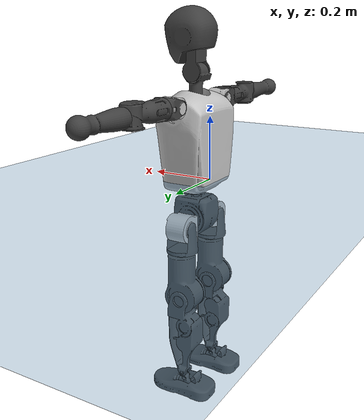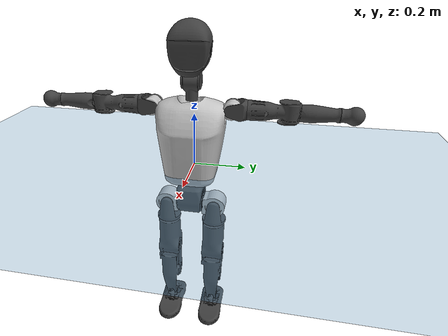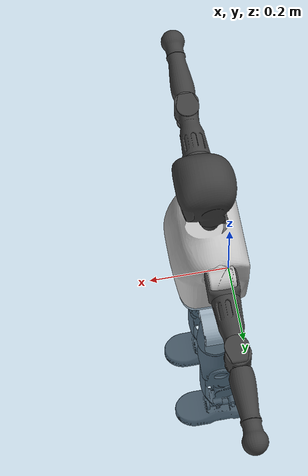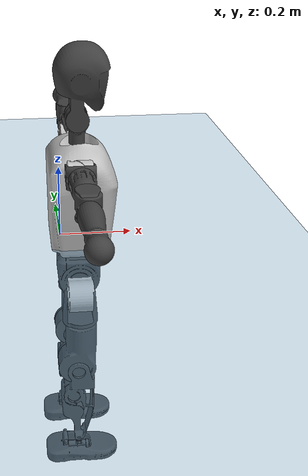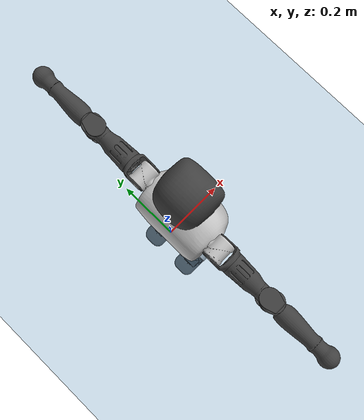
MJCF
<mujoco model="T1">
  <compiler angle="radian" assetdir="assets" balanceinertia="true" inertiafromgeom="false"/>

  <option timestep="0.005" density="1.2" viscosity="2e-05"/>

  <size nkey="1"/>

  <visual>
    <quality shadowsize="8192"/>
    <map shadowclip="0.5"/>
  </visual>

  <default>
    <default class="/">
      <joint armature="0.01" damping="0.01" frictionloss="0.1"/>
      <geom contype="0" conaffinity="0" group="1" solref="-1000 -80"/>
      <site size="0.01 0.005 0.005" group="5"/>
      <general forcelimited="true" biastype="affine" gainprm="25" biasprm="0 -25 -0.6"/>
      <default class="t1">
        <geom rgba="0.25 0.25 0.25 1"/>
        <default class="visual">
          <geom type="mesh" group="2"/>
        </default>
        <default class="collision">
          <geom group="3"/>
        </default>
        <default class="foot">
          <geom size="0.1115 0.05 0.015" type="box" condim="6" group="4" priority="1" solimp="0.015 1 0.015"/>
        </default>
        <default class="reward_collision_sphere">
          <geom group="5" rgba="1 0 0 1"/>
        </default>
      </default>
    </default>
  </default>

  <asset>
    <texture type="skybox" colorspace="auto" name="//unnamed_texture_0" builtin="gradient" rgb1="0.95 0.95 0.95" rgb2="0.95 0.95 0.95" width="100" height="600"/>
    <texture type="2d" colorspace="auto" name="texplane" builtin="checker" rgb1="0.345 0.575 0.748" rgb2="0.345 0.575 0.748" markrgb="1 1 1" width="512" height="512"/>
    <material name="MatPlane" class="/" texture="texplane" texuniform="true" texrepeat="2 2" specular="0.9"/>
    <mesh name="Trunk" class="/" file="Trunk.stl"/>
    <mesh name="H1" class="/" file="H1.stl"/>
    <mesh name="H2" class="/" file="H2.stl"/>
    <mesh name="AL1" class="/" file="AL1.stl"/>
    <mesh name="AL2" class="/" file="AL2.stl"/>
    <mesh name="AL3" class="/" file="AL3.stl"/>
    <mesh name="left_hand_link" class="/" file="left_hand_link.stl"/>
    <mesh name="AR1" class="/" file="AR1.stl"/>
    <mesh name="AR2" class="/" file="AR2.stl"/>
    <mesh name="AR3" class="/" file="AR3.stl"/>
    <mesh name="right_hand_link" class="/" file="right_hand_link.stl"/>
    <mesh name="Waist" class="/" file="Waist.stl"/>
    <mesh name="Hip_Pitch_Left" class="/" file="Hip_Pitch_Left.stl"/>
    <mesh name="Hip_Roll_Left" class="/" file="Hip_Roll_Left.stl"/>
    <mesh name="Hip_Yaw_Left" class="/" file="Hip_Yaw_Left.stl"/>
    <mesh name="Shank_Left" class="/" file="Shank_Left.stl"/>
    <mesh name="Ankle_Cross_Left" class="/" file="Ankle_Cross_Left.stl"/>
    <mesh name="left_foot_link" class="/" file="left_foot_link.stl"/>
    <mesh name="Hip_Pitch_Right" class="/" file="Hip_Pitch_Right.stl"/>
    <mesh name="Hip_Roll_Right" class="/" file="Hip_Roll_Right.stl"/>
    <mesh name="Hip_Yaw_Right" class="/" file="Hip_Yaw_Right.stl"/>
    <mesh name="Shank_Right" class="/" file="Shank_Right.stl"/>
    <mesh name="Ankle_Cross_Right" class="/" file="Ankle_Cross_Right.stl"/>
    <mesh name="right_foot_link" class="/" file="right_foot_link.stl"/>
  </asset>

  <worldbody>
    <geom name="floor" class="/" size="100 100 0.125" type="plane" group="0" material="MatPlane"/>
    <light name="toplight_shadow" class="/" pos="0 0 5" dir="0.0990148 0.0990148 -0.990148" type="directional" ambient="0.04 0.04 0.04" diffuse="0.55 0.55 0.55" specular="0.12 0.12 0.12"/>
    <light name="toplight_fill" class="/" pos="0 0 5" dir="0.0990148 0.0990148 -0.990148" type="directional" castshadow="false" ambient="0.04 0.04 0.04" diffuse="0.3 0.3 0.3" specular="0.08 0.08 0.08"/>
    <body name="trunk" childclass="t1" pos="0.000303149 2.77513e-05 -0.0005077" quat="1 2.21787e-06 -2.41002e-05 1.43882e-05">
      <inertial pos="0.042953 -0.000322056 0.114792" quat="0.999935 -0.00132028 -0.0109957 0.00271092" mass="9.34524" diaginertia="0.0283656 0.0430431 0.0874521"/>
      <joint name="//unnamed_joint_0" type="free" armature="0" damping="0" frictionloss="0"/>
      <geom name="//unnamed_geom_1" class="visual" rgba="0.76 0.76 0.76 1" mesh="Trunk"/>
      <geom name="//unnamed_geom_2" class="collision" size="0.069337 0.0924493 0.138674" pos="0.0473187 0 0.131324" type="box"/>
      <geom name="//unnamed_geom_3" class="reward_collision_sphere" size="0.106317" pos="0.0473187 0 0.109437"/>
      <geom name="//unnamed_geom_4" class="reward_collision_sphere" size="0.0138674" pos="0.0473187 0.0756897 0"/>
      <geom name="//unnamed_geom_5" class="reward_collision_sphere" size="0.0138674" pos="0.0473187 -0.0756897 0"/>
      <geom name="//unnamed_geom_6" class="reward_collision_sphere" size="0.0138674" pos="0.0473187 0.0952799 0.196986"/>
      <geom name="//unnamed_geom_7" class="reward_collision_sphere" size="0.0138674" pos="0.0473187 -0.0952799 0.196986"/>
      <site name="imu" pos="0.00355567 0.000235119 -0.00213231" size="0.00924493"/>
      <camera name="track" pos="0 -1.78093 0" quat="0.707107 0.707107 0 0" mode="trackcom"/>
      <camera name="ego_camera" pos="0.0962148 0 0.459634" quat="-0.5 -0.5 0.5 0.5"/>
      <body name="H1" pos="0.04949 0.000629313 0.265832" quat="1 4.26447e-05 0.00044442 0.000122709">
        <inertial pos="-0.00130877 -0.00194037 0.0623111" quat="0.763759 -0.0132716 0.00270797 0.64536" mass="0.354668" diaginertia="7.38955e-05 0.000125353 0.000235988"/>
        <joint name="AAHead_yaw" pos="0 0 0" axis="0.000522411 -0.000310059 1" range="-1.5778 1.55441" armature="0.00941062" damping="0.0107446" frictionloss="0.0910026"/>
        <geom name="//unnamed_geom_8" class="visual" mesh="H1"/>
        <body name="H2" pos="-0.00034646 -0.000454715 0.0677595" quat="1 -8.89206e-07 -3.35389e-06 -6.58081e-06">
          <inertial pos="0.00609455 0.000951562 0.107087" quat="0.988457 0.106327 -0.0744444 -0.078139" mass="0.501297" diaginertia="0.000617408 0.00107339 0.00268642"/>
          <joint name="Head_pitch" pos="0 0 0" axis="0.00103732 -0.999998 -0.00196125" range="-1.22228 0.334297" armature="0.00926671" damping="0.00955718" frictionloss="0.0926788"/>
          <geom name="//unnamed_geom_9" class="visual" mesh="H2"/>
          <geom name="//unnamed_geom_10" class="collision" size="0.0739594" pos="0.00788646 0 0.12038"/>
          <geom name="//unnamed_geom_11" class="reward_collision_sphere" size="0.0832044" pos="0.0157729 0 0.109437"/>
        </body>
      </body>
      <body name="AL1" pos="0.0469459 0.0950716 0.24037" quat="1 6.76355e-05 0.000463035 1.63135e-05">
        <inertial pos="-0.00132822 0.0391487 0.000189304" quat="0.506377 0.492999 -0.505747 0.494727" mass="0.417366" diaginertia="0.000415749 0.000725 0.000457741"/>
        <joint name="Left_Shoulder_Pitch" pos="0 0 0" axis="0.000429916 1 -0.000148082" range="-3.30838 1.23809" armature="0.00947078" damping="0.00740624" frictionloss="0.0929286"/>
        <geom name="//unnamed_geom_12" class="visual" rgba="0.76 0.76 0.76 1" mesh="AL1"/>
        <body name="AL2" pos="0.000836902 0.0429856 0.000526058" quat="1 0.000382134 -0.000278672 0.00015362">
          <inertial pos="0.00217978 0.0338532 0.000363575" quat="0.488018 0.511017 -0.489463 0.511005" mass="0.128321" diaginertia="0.000123098 0.000192757 0.000276559"/>
          <joint name="Left_Shoulder_Roll" pos="0 0 0" axis="-0.999997 -0.00221391 -0.000755168" range="-1.55487 1.73906" armature="0.00890547" damping="0.00614354" frictionloss="0.0931771"/>
          <geom name="//unnamed_geom_13" class="visual" mesh="AL2"/>
          <body name="AL3" pos="-0.000363992 0.0544392 0.000340895" quat="1 -0.000288349 7.67073e-05 -9.53882e-05">
            <inertial pos="-0.000101949 0.0757399 -0.000156908" quat="0.706405 0.707806 -0.000600475 0.00175029" mass="0.807952" diaginertia="0.00395103 0.00716002 0.000986389"/>
            <joint name="Left_Elbow_Pitch" pos="0 0 0" axis="-4.25168e-05 -1 -0.000136141" range="-2.25986 2.27043" armature="0.00912216" damping="0.0094115" frictionloss="0.0929918"/>
            <geom name="//unnamed_geom_14" class="visual" mesh="AL3"/>
            <geom name="//unnamed_geom_15" class="collision" size="0.0277348 0.069337" pos="0 0.0445233 0" quat="0.707105 0.707108 0 0" type="cylinder"/>
            <geom name="//unnamed_geom_16" class="reward_collision_sphere" size="0.0332817"/>
            <body name="left_hand_link" pos="0.000681728 0.132055 -0.000161758" quat="1 5.44249e-06 0.000128132 -2.65736e-05">
              <inertial pos="0.000116455 0.0981975 0.00035224" quat="0.707881 0.706331 -6.22822e-05 -0.000236781" mass="0.255113" diaginertia="0.00243669 0.00449364 0.000336552"/>
              <joint name="Left_Elbow_Yaw" pos="0 0 0" axis="-0.00251735 -0.000975102 0.999996" range="-2.44452 -0.00908178" armature="0.00927327" damping="0.0148004" frictionloss="0.0956859"/>
              <geom name="//unnamed_geom_17" class="visual" mesh="left_hand_link"/>
              <geom name="//unnamed_geom_18" class="collision" size="0.0277348 0.0808931" pos="0 0.115761 0" quat="0.707105 0.707108 0 0" type="cylinder"/>
              <geom name="//unnamed_geom_19" class="reward_collision_sphere" size="0.0462246"/>
              <geom name="//unnamed_geom_20" class="reward_collision_sphere" size="0.0323573" pos="0 0.0979513 0"/>
              <geom name="//unnamed_geom_21" class="reward_collision_sphere" size="0.0323573" pos="0 0.19145 0"/>
            </body>
          </body>
        </body>
      </body>
      <body name="AR1" pos="0.0449769 -0.0944197 0.239347" quat="1 0.000126225 0.000225027 7.06401e-05">
        <inertial pos="-0.00102646 -0.0406925 0.000224249" quat="0.505256 0.495058 -0.504443 0.495148" mass="0.415243" diaginertia="0.000415809 0.000720529 0.00046062"/>
        <joint name="Right_Shoulder_Pitch" pos="0 0 0" axis="-0.00614908 -0.999977 0.00292209" stiffness="0.00176478" range="-1.21844 3.30196" armature="0.00932931" damping="0.00612675" frictionloss="0.0931369"/>
        <geom name="//unnamed_geom_22" class="visual" rgba="0.76 0.76 0.76 1" mesh="AR1"/>
        <body name="AR2" pos="-0.000821836 -0.0414602 -0.000407502" quat="1 -0.000116339 -0.000117469 -0.000227414">
          <inertial pos="0.00387243 -0.0341474 0.00119336" quat="0.511808 0.491272 -0.508904 0.487567" mass="0.126479" diaginertia="0.000121732 0.000190665 0.000275074"/>
          <joint name="Right_Shoulder_Roll" pos="0 0 0" axis="-0.99997 0.00121099 -0.00771113" range="-1.75547 1.5654" armature="0.00925388" damping="0.00732516" frictionloss="0.0918465"/>
          <geom name="//unnamed_geom_23" class="visual" mesh="AR2"/>
          <body name="AR3" pos="0.000538278 -0.0533926 -0.000442368" quat="1 -2.54879e-05 -8.81354e-06 3.48135e-05">
            <inertial pos="-0.000368712 -0.0764781 0.000321613" quat="0.708891 0.705305 0.00266043 0.00346088" mass="0.812373" diaginertia="0.00395827 0.00707511 0.000967815"/>
            <joint name="Right_Elbow_Pitch" pos="0 0 0" axis="-0.000154857 1 -0.000107536" range="-2.27064 2.26683" armature="0.00902721" damping="0.0051541" frictionloss="0.0942472"/>
            <geom name="//unnamed_geom_24" class="visual" mesh="AR3"/>
            <geom name="//unnamed_geom_25" class="collision" size="0.0277348 0.069337" pos="0 -0.0445233 0" quat="0.707105 0.707108 0 0" type="cylinder"/>
            <geom name="//unnamed_geom_26" class="reward_collision_sphere" size="0.0332817"/>
            <body name="right_hand_link" pos="-0.00055307 -0.131287 -0.000286979" quat="1 0.000239289 0.000181018 -0.000221968">
              <inertial pos="5.79944e-05 -0.097383 0.00118392" quat="0.706486 0.707726 0.000119837 0.000279391" mass="0.258142" diaginertia="0.00249846 0.004526 0.00033498"/>
              <joint name="Right_Elbow_Yaw" pos="0 0 0" axis="0.00366699 0.00112024 0.999993" range="0.00762061 2.44719" armature="0.00956787" damping="0.00868976" frictionloss="0.0921418"/>
              <geom name="//unnamed_geom_27" class="visual" mesh="right_hand_link"/>
              <geom name="//unnamed_geom_28" class="collision" size="0.0277348 0.0808931" pos="0 -0.115761 0" quat="0.707105 0.707108 0 0" type="cylinder"/>
              <geom name="//unnamed_geom_29" class="reward_collision_sphere" size="0.0462246"/>
              <geom name="//unnamed_geom_30" class="reward_collision_sphere" size="0.0323573" pos="0 -0.0979513 0"/>
              <geom name="//unnamed_geom_31" class="reward_collision_sphere" size="0.0323573" pos="0 -0.19145 0"/>
            </body>
          </body>
        </body>
      </body>
      <body name="Waist" pos="0.0494621 -0.00138959 -0.125694" quat="1 0.000111788 4.61952e-05 3.97331e-05">
        <inertial pos="0.00199592 -0.000873668 0.00779389" quat="0.983304 0.00243012 -0.181946 0.00193806" mass="2.03025" diaginertia="0.00164677 0.00297237 0.00753016"/>
        <joint name="Waist" pos="0 0 0" axis="-3.39702e-05 8.95503e-05 1" range="-1.55563 1.56055" armature="0.00932854" damping="0.0124225" frictionloss="0.0923874"/>
        <geom name="//unnamed_geom_32" class="visual" mesh="Waist"/>
        <body name="Hip_Pitch_Left" pos="0.000207563 0.0938748 0.000130489" quat="1 -4.40601e-07 -1.51387e-05 6.50148e-06">
          <inertial pos="0.00128944 -0.0062083 -0.0198047" quat="0.974963 0.221854 0.0149545 0.00183088" mass="0.810582" diaginertia="0.000557589 0.000835356 0.00199209"/>
          <joint name="Left_Hip_Pitch" pos="0 0 0" axis="-0.00272622 0.999995 -0.00171219" range="-1.80446 1.55423" armature="0.0092191" damping="0.00655594" frictionloss="0.0924723"/>
          <geom name="//unnamed_geom_33" class="visual" rgba="0.76 0.76 0.76 1" mesh="Hip_Pitch_Left"/>
          <body name="Hip_Roll_Left" pos="-0.000343763 -0.000256755 -0.0212729" quat="1 -0.000182259 9.63635e-05 -0.000128215">
            <inertial pos="0.000575019 -0.000205695 -0.0588943" quat="0.707019 -0.00607042 -0.00617962 0.707141" mass="0.304157" diaginertia="0.000533211 0.000848676 0.000808748"/>
            <joint name="Left_Hip_Roll" pos="0 0 0" axis="-1 -7.98381e-06 0.000176478" range="-1.56357 0.198637" armature="0.00922833" damping="0.0105594" frictionloss="0.0901415"/>
            <geom name="//unnamed_geom_34" class="visual" mesh="Hip_Roll_Left"/>
            <geom name="//unnamed_geom_35" class="reward_collision_sphere" size="0.0508471"/>
            <body name="Hip_Yaw_Left" pos="0.000834842 -0.000610263 -0.0896888" quat="1 0.000235004 0.000113927 -0.00029706">
              <inertial pos="-0.0057363 -0.000690991 -0.0976575" quat="0.694638 -0.0327729 -0.0310941 0.717939" mass="1.72731" diaginertia="0.0078825 0.0140307 0.00402783"/>
              <joint name="Left_Hip_Yaw" pos="0 0 0" axis="-0.00249628 0.00148603 -0.999996" stiffness="0.000246614" range="-1.00461 1.01385" armature="0.00924716" damping="0.00946089" frictionloss="0.0925741"/>
              <geom name="//unnamed_geom_36" class="visual" mesh="Hip_Yaw_Left"/>
              <geom name="//unnamed_geom_37" class="collision" size="0.0462246 0.0739594" type="cylinder"/>
              <body name="Shank_Left" pos="-0.0112037 -0.000123358 -0.146419" quat="1 0.00032077 7.62612e-06 -0.000257645">
                <inertial pos="-0.00461363 0.000218504 -0.136506" quat="0.997611 0.00410298 -0.023258 0.0649247" mass="1.35574" diaginertia="0.010651 0.0190377 0.00290967"/>
                <joint name="Left_Knee_Pitch" pos="0 0 0" axis="0.00342955 0.999994 0.00102404" range="-0.00619443 2.33648" armature="0.00935811" damping="0.00877416" frictionloss="0.0915788"/>
                <geom name="//unnamed_geom_38" class="visual" mesh="Shank_Left"/>
                <geom name="//unnamed_geom_39" class="collision" size="0.0462246 0.069337" pos="0 0 -0.131324" type="cylinder"/>
                <geom name="//unnamed_geom_40" class="reward_collision_sphere" size="0.060092"/>
                <body name="Ankle_Cross_Left" pos="0.000479506 -0.000224794 -0.306253" quat="1 7.80357e-05 0.000178639 0.0004569">
                  <inertial pos="-0.00304639 -0.000634799 -0.00955659" quat="0.442468 0.551406 0.551456 0.442797" mass="0.0580152" diaginertia="8.84088e-06 1.45244e-05 1.80113e-05"/>
                  <joint name="Left_Ankle_Pitch" pos="0 0 0" axis="0.00240877 0.999993 -0.00280353" range="-0.888331 0.331461" armature="0.0096231" damping="0.00591716" frictionloss="0.0920847"/>
                  <geom name="//unnamed_geom_41" class="visual" mesh="Ankle_Cross_Left"/>
                  <body name="left_foot_link" pos="-0.000879142 -0.000186533 -0.0139602" quat="1 3.08224e-06 1.08519e-06 1.71547e-05">
                    <inertial pos="-8.20959e-05 -9.63783e-05 -0.00950548" quat="9.69574e-07 0.620496 0.000691607 0.784209" mass="0.54645" diaginertia="0.000815073 0.00133475 0.00343735"/>
                    <joint name="Left_Ankle_Roll" pos="0 0 0" axis="-1 -0.000853339 -0.000143526" stiffness="0.000504659" range="-0.424851 0.448229" armature="0.00928371" damping="0.0117621" frictionloss="0.0929782"/>
                    <geom name="//unnamed_geom_42" class="visual" mesh="left_foot_link"/>
                    <geom name="left_foot" class="foot" size="0.0998097 0.0480355 0.0136205" pos="0.00788646 0 -0.0164155"/>
                    <geom name="//unnamed_geom_44" class="reward_collision_sphere" size="0.0480736" pos="0.00788646 0 -0.0164155"/>
                    <geom name="//unnamed_geom_45" class="reward_collision_sphere" size="0.0277348" pos="0.0749213 -0.0204807 -0.0164155"/>
                    <geom name="//unnamed_geom_46" class="reward_collision_sphere" size="0.0277348" pos="-0.0552052 -0.0204807 -0.0164155"/>
                    <site name="left_foot" class="foot" pos="0.00788646 0 -0.0164155" size="0.00924493"/>
                  </body>
                </body>
              </body>
            </body>
          </body>
        </body>
        <body name="Hip_Pitch_Right" pos="-0.00112947 -0.0947722 -0.000172157" quat="1 2.86787e-05 -0.000172817 -6.9515e-05">
          <inertial pos="0.000488884 0.00676329 -0.0192042" quat="0.973523 -0.228097 0.0141525 -0.00486251" mass="0.809626" diaginertia="0.000552277 0.000821636 0.00195429"/>
          <joint name="Right_Hip_Pitch" pos="0 0 0" axis="0.00407028 -0.999992 0.000275051" range="-1.57572 1.80524" armature="0.00910718" damping="0.00706691" frictionloss="0.088468"/>
          <geom name="//unnamed_geom_47" class="visual" rgba="0.76 0.76 0.76 1" mesh="Hip_Pitch_Right"/>
          <body name="Hip_Roll_Right" pos="-4.4255e-05 0.000630827 -0.0225631" quat="1 0.000280771 0.00050251 9.4784e-05">
            <inertial pos="0.00191877 -0.000117724 -0.0579152" quat="0.707522 -0.0047957 -0.00795243 0.706631" mass="0.306746" diaginertia="0.000541459 0.000860271 0.00081498"/>
            <joint name="Right_Hip_Roll" pos="0 0 0" axis="-0.999998 -0.00163117 -0.000966224" range="-0.206649 1.55986" armature="0.00920875" damping="0.00944124" frictionloss="0.0921945"/>
            <geom name="//unnamed_geom_48" class="visual" mesh="Hip_Roll_Right"/>
            <geom name="//unnamed_geom_49" class="reward_collision_sphere" size="0.0508471"/>
            <body name="Hip_Yaw_Right" pos="0.000181829 0.00059587 -0.0897228" quat="1 9.96007e-05 -2.54987e-05 -0.000238942">
              <inertial pos="-0.00635327 -0.0008104 -0.0977289" quat="0.714729 -0.0338124 -0.03715 0.697596" mass="1.70887" diaginertia="0.00787191 0.0143411 0.00403309"/>
              <joint name="Right_Hip_Yaw" pos="0 0 0" axis="0.000121219 6.03995e-05 -1" range="-1.00168 0.988887" armature="0.00930883" damping="0.00669642" frictionloss="0.0917989"/>
              <geom name="//unnamed_geom_50" class="visual" mesh="Hip_Yaw_Right"/>
              <geom name="//unnamed_geom_51" class="collision" size="0.0462246 0.0739594" type="cylinder"/>
              <body name="Shank_Right" pos="-0.010842 -0.0012518 -0.146236" quat="1 2.28242e-06 4.94969e-07 9.08746e-07">
                <inertial pos="-0.00499322 -0.000945984 -0.134792" quat="0.999262 -0.000599539 -0.023357 -0.0304986" mass="1.41999" diaginertia="0.0106883 0.0194967 0.00309236"/>
                <joint name="Right_Knee_Pitch" pos="0 0 0" axis="0.0057713 -0.999983 -0.000838806" range="-2.34701 -0.0106845" armature="0.00918542" damping="0.00310676" frictionloss="0.0898044"/>
                <geom name="//unnamed_geom_52" class="visual" mesh="Shank_Right"/>
                <geom name="//unnamed_geom_53" class="collision" size="0.0462246 0.069337" pos="0 0 -0.131324" type="cylinder"/>
                <geom name="//unnamed_geom_54" class="reward_collision_sphere" size="0.060092"/>
                <body name="Ankle_Cross_Right" pos="0.000788343 -0.000220402 -0.305814" quat="1 3.13845e-06 -9.21695e-06 -2.04981e-06">
                  <inertial pos="-0.0028577 0.000434568 -0.00861359" quat="0.444027 0.551126 0.548996 0.444639" mass="0.0582374" diaginertia="8.92875e-06 1.45181e-05 1.79173e-05"/>
                  <joint name="Right_Ankle_Pitch" pos="0 0 0" axis="0.00356255 -0.999986 0.00383504" range="-0.346695 0.883907" armature="0.00902407" damping="0.0101923" frictionloss="0.0888524"/>
                  <geom name="//unnamed_geom_55" class="visual" mesh="Ankle_Cross_Right"/>
                  <body name="right_foot_link" pos="-6.25311e-05 -0.000562441 -0.0139449" quat="1 -6.13437e-05 -0.000424163 -9.56913e-05">
                    <inertial pos="0.00028644 0.000325191 -0.00978084" quat="0.000570695 0.619493 0.000742442 0.785002" mass="0.536556" diaginertia="0.000827166 0.00133093 0.00344406"/>
                    <joint name="Right_Ankle_Roll" pos="0 0 0" axis="-1 -0.000437416 -0.000105477" range="-0.422614 0.424728" armature="0.00956047" damping="0.00760978" frictionloss="0.0920824"/>
                    <geom name="//unnamed_geom_56" class="visual" mesh="right_foot_link"/>
                    <geom name="right_foot" class="foot" size="0.0941754 0.046491 0.0137459" pos="0.00788646 0 -0.0164155"/>
                    <geom name="//unnamed_geom_58" class="reward_collision_sphere" size="0.0369797"/>
                    <geom name="//unnamed_geom_59" class="reward_collision_sphere" size="0.0277348" pos="0.00788646 0 -0.0164155"/>
                    <geom name="//unnamed_geom_60" class="reward_collision_sphere" size="0.0277348" pos="0.0749213 0.0204807 -0.0164155"/>
                    <geom name="//unnamed_geom_61" class="reward_collision_sphere" size="0.0277348" pos="-0.0552052 0.0204807 -0.0164155"/>
                    <site name="right_foot" class="foot" pos="0.00788646 0 -0.0164155" size="0.00924493"/>
                  </body>
                </body>
              </body>
            </body>
          </body>
        </body>
      </body>
    </body>
  </worldbody>

  <contact>
    <pair class="/" geom1="floor" geom2="left_foot" name="//unnamed_contact_0"/>
    <pair class="/" geom1="floor" geom2="right_foot" name="//unnamed_contact_1"/>
  </contact>

  <actuator>
    <general name="AAHead_yaw" class="/" joint="AAHead_yaw" forcerange="-6.6479 6.6479" gainprm="22.664" biasprm="0 -22.664 -0.532122"/>
    <general name="Head_pitch" class="/" joint="Head_pitch" forcerange="-6.52812 6.52812" gainprm="22.664" biasprm="0 -22.664 -0.532122"/>
    <general name="Left_Shoulder_Pitch" class="/" joint="Left_Shoulder_Pitch" forcerange="-16.5153 16.5153" gainprm="22.664" biasprm="0 -22.664 -0.532122"/>
    <general name="Left_Shoulder_Roll" class="/" joint="Left_Shoulder_Roll" forcerange="-16.5401 16.5401" gainprm="22.664" biasprm="0 -22.664 -0.532122"/>
    <general name="Left_Elbow_Pitch" class="/" joint="Left_Elbow_Pitch" forcerange="-16.5112 16.5112" gainprm="22.664" biasprm="0 -22.664 -0.532122"/>
    <general name="Left_Elbow_Yaw" class="/" joint="Left_Elbow_Yaw" forcerange="-16.4616 16.4616" gainprm="22.664" biasprm="0 -22.664 -0.532122"/>
    <general name="Right_Shoulder_Pitch" class="/" joint="Right_Shoulder_Pitch" forcerange="-16.7695 16.7695" gainprm="22.664" biasprm="0 -22.664 -0.532122"/>
    <general name="Right_Shoulder_Roll" class="/" joint="Right_Shoulder_Roll" forcerange="-16.625 16.625" gainprm="22.664" biasprm="0 -22.664 -0.532122"/>
    <general name="Right_Elbow_Pitch" class="/" joint="Right_Elbow_Pitch" forcerange="-16.5526 16.5526" gainprm="22.664" biasprm="0 -22.664 -0.532122"/>
    <general name="Right_Elbow_Yaw" class="/" joint="Right_Elbow_Yaw" forcerange="-16.4449 16.4449" gainprm="22.664" biasprm="0 -22.664 -0.532122"/>
    <general name="Waist" class="/" joint="Waist" forcerange="-27.1176 27.1176" gainprm="22.664" biasprm="0 -22.664 -0.532122"/>
    <general name="Left_Hip_Pitch" class="/" joint="Left_Hip_Pitch" forcerange="-40.2663 40.2663" gainprm="22.664" biasprm="0 -22.664 -0.532122"/>
    <general name="Left_Hip_Roll" class="/" joint="Left_Hip_Roll" forcerange="-28.2477 28.2477" gainprm="22.664" biasprm="0 -22.664 -0.532122"/>
    <general name="Left_Hip_Yaw" class="/" joint="Left_Hip_Yaw" forcerange="-27.7557 27.7557" gainprm="22.664" biasprm="0 -22.664 -0.532122"/>
    <general name="Left_Knee_Pitch" class="/" joint="Left_Knee_Pitch" forcerange="-54.7569 54.7569" gainprm="22.664" biasprm="0 -22.664 -0.532122"/>
    <general name="Left_Ankle_Pitch" class="/" joint="Left_Ankle_Pitch" forcerange="-18.8115 18.8115" gainprm="22.664" biasprm="0 -22.664 -0.532122"/>
    <general name="Left_Ankle_Roll" class="/" joint="Left_Ankle_Roll" forcerange="-13.964 13.964" gainprm="22.664" biasprm="0 -22.664 -0.532122"/>
    <general name="Right_Hip_Pitch" class="/" joint="Right_Hip_Pitch" forcerange="-42.2575 42.2575" gainprm="22.664" biasprm="0 -22.664 -0.532122"/>
    <general name="Right_Hip_Roll" class="/" joint="Right_Hip_Roll" forcerange="-28.1907 28.1907" gainprm="22.664" biasprm="0 -22.664 -0.532122"/>
    <general name="Right_Hip_Yaw" class="/" joint="Right_Hip_Yaw" forcerange="-27.7921 27.7921" gainprm="22.664" biasprm="0 -22.664 -0.532122"/>
    <general name="Right_Knee_Pitch" class="/" joint="Right_Knee_Pitch" forcerange="-53.3927 53.3927" gainprm="22.664" biasprm="0 -22.664 -0.532122"/>
    <general name="Right_Ankle_Pitch" class="/" joint="Right_Ankle_Pitch" forcerange="-18.9358 18.9358" gainprm="22.664" biasprm="0 -22.664 -0.532122"/>
    <general name="Right_Ankle_Roll" class="/" joint="Right_Ankle_Roll" forcerange="-13.6631 13.6631" gainprm="22.664" biasprm="0 -22.664 -0.532122"/>
  </actuator>

  <sensor>
    <gyro site="imu" name="imu_angular_velocity"/>
    <velocimeter site="imu" name="imu_linear_velocity"/>
    <framelinvel objtype="site" objname="left_foot" name="left_foot_global_linear_velocity"/>
    <framelinvel objtype="site" objname="right_foot" name="right_foot_global_linear_velocity"/>
  </sensor>

  <keyframe>
    <key name="home" qpos="0 0 0.6385 1 0 0 0 0 0 0 1.4 0 -0.4 0 -1.4 0 0.4 0 -0.4 0 0 0.8 -0.4 0 0.4 0 0 -0.8 0.4 0"/>
  </keyframe>
</mujoco>
